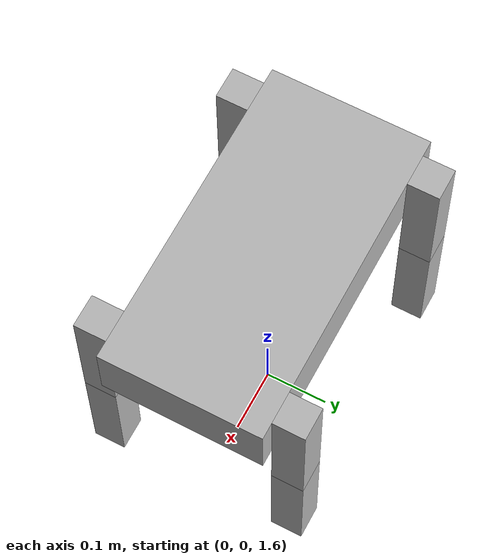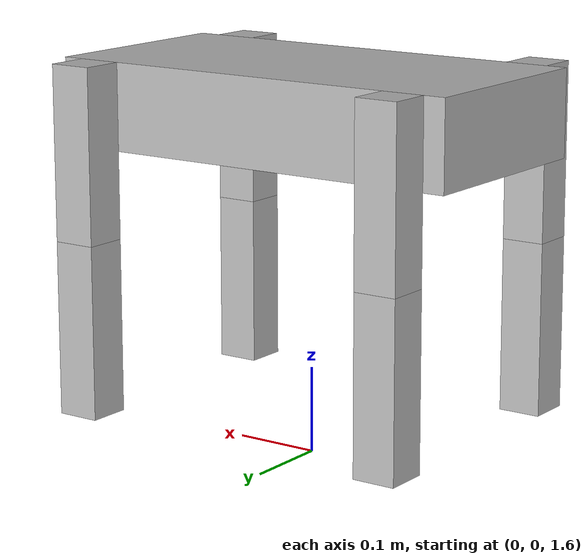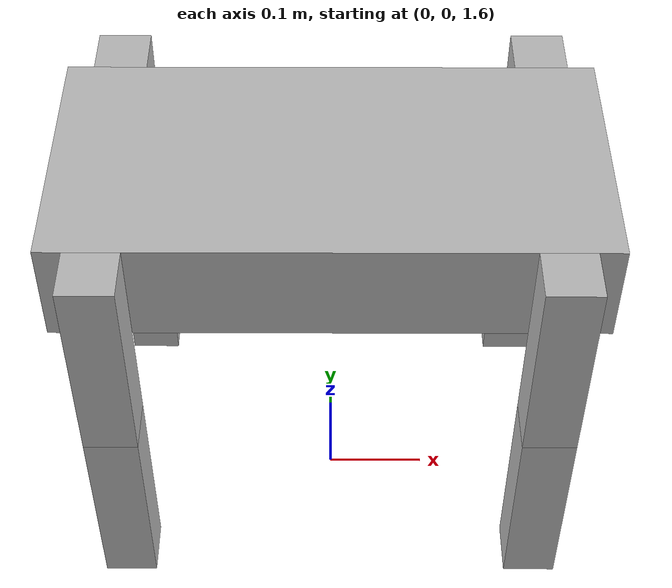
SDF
<?xml version="1.0" ?>
<sdf version="1.7">
  <world name="Quadruped Robot Fixed Demo">

    <!-- A global light source -->
    <include>
      <uri>model://sun</uri>
    </include>

    <!-- A ground plane -->
    <include>
      <uri>model://ground_plane</uri>
    </include>

    <!-- Pose -->
    <include>
      <uri>model://quadruped_fixed</uri>
      <pose>0 0 2.0 0 0 0</pose>
    </include>
  </world>
</sdf>

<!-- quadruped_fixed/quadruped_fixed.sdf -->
<sdf version='1.7'>
  <model name='quadruped'>
    <joint name='fixed' type='fixed'>
      <pose relative_to='__model__'>0 0 0 0 -0 0</pose>
      <parent>world</parent>
      <child>base</child>
    </joint>
    <link name='base'>
      <pose relative_to='fixed'>0 0 0 0 -0 0</pose>
      <inertial>
        <pose>0 0 0 0 -0 0</pose>
        <mass>1</mass>
        <inertia>
          <ixx>0</ixx>
          <ixy>0</ixy>
          <ixz>0</ixz>
          <iyy>0</iyy>
          <iyz>0</iyz>
          <izz>0</izz>
        </inertia>
      </inertial>
      <collision name='base_collision'>
        <pose>0 0 0 0 -0 0</pose>
        <geometry>
          <box>
            <size>0.5 0.25 0.1</size>
          </box>
        </geometry>
      </collision>
      <visual name='base_visual'>
        <pose>0 0 0 0 -0 0</pose>
        <geometry>
          <box>
            <size>0.5 0.25 0.1</size>
          </box>
        </geometry>
      </visual>
    </link>
    <joint name='up_bl' type='revolute'>
      <pose relative_to='base'>-0.2 0 0 0 -0 0</pose>
      <parent>base</parent>
      <child>up_leg_bl</child>
      <axis>
        <xyz>0 -1 0</xyz>
        <limit>
          <lower>-1.57</lower>
          <upper>1.57</upper>
          <effort>100</effort>
          <velocity>10</velocity>
        </limit>
        <dynamics>
          <damping>1</damping>
          <friction>0.01</friction>
          <spring_reference>0</spring_reference>
          <spring_stiffness>0</spring_stiffness>
        </dynamics>
      </axis>
    </joint>
    <link name='up_leg_bl'>
      <pose relative_to='up_bl'>0 0 0 0 -0 0</pose>
      <inertial>
        <pose>0 0 0 0 -0 0</pose>
        <mass>1</mass>
        <inertia>
          <ixx>0.00208333</ixx>
          <ixy>0</ixy>
          <ixz>0</ixz>
          <iyy>0.000208333</iyy>
          <iyz>0</iyz>
          <izz>0.001875</izz>
        </inertia>
      </inertial>
      <collision name='up_leg_bl_collision'>
        <pose>0 0.15 -0.05 0 -0 0</pose>
        <geometry>
          <box>
            <size>0.05 0.05 0.2</size>
          </box>
        </geometry>
      </collision>
      <visual name='up_leg_bl_visual'>
        <pose>0 0.15 -0.05 0 -0 0</pose>
        <geometry>
          <box>
            <size>0.05 0.05 0.2</size>
          </box>
        </geometry>
      </visual>
    </link>
    <joint name='bottom_bl' type='revolute'>
      <pose relative_to='up_leg_bl'>0 0.15 -0.15 0 -0 0</pose>
      <parent>up_leg_bl</parent>
      <child>bottom_leg_bl</child>
      <axis>
        <xyz>0 -1 0</xyz>
        <limit>
          <lower>-1.57</lower>
          <upper>1.57</upper>
          <effort>100</effort>
          <velocity>10</velocity>
        </limit>
        <dynamics>
          <damping>1</damping>
          <friction>0.01</friction>
          <spring_reference>0</spring_reference>
          <spring_stiffness>0</spring_stiffness>
        </dynamics>
      </axis>
    </joint>
    <link name='bottom_leg_bl'>
      <pose relative_to='bottom_bl'>0 0 0 0 -0 0</pose>
      <inertial>
        <pose>0 0 0 0 -0 0</pose>
        <mass>1</mass>
        <inertia>
          <ixx>0.000833333</ixx>
          <ixy>0</ixy>
          <ixz>0</ixz>
          <iyy>0.000833333</iyy>
          <iyz>0</iyz>
          <izz>0</izz>
        </inertia>
      </inertial>
      <collision name='bottom_leg_bl_collision'>
        <pose>0 0 -0.1 0 -0 0</pose>
        <geometry>
          <box>
            <size>0.05 0.05 0.2</size>
          </box>
        </geometry>
      </collision>
      <visual name='bottom_leg_bl_visual'>
        <pose>0 0 -0.1 0 -0 0</pose>
        <geometry>
          <box>
            <size>0.05 0.05 0.2</size>
          </box>
        </geometry>
      </visual>
    </link>
    <joint name='up_br' type='revolute'>
      <pose relative_to='base'>-0.2 0 0 0 -0 0</pose>
      <parent>base</parent>
      <child>up_leg_br</child>
      <axis>
        <xyz>0 -1 0</xyz>
        <limit>
          <lower>-1.57</lower>
          <upper>1.57</upper>
          <effort>100</effort>
          <velocity>10</velocity>
        </limit>
        <dynamics>
          <damping>1</damping>
          <friction>0.01</friction>
          <spring_reference>0</spring_reference>
          <spring_stiffness>0</spring_stiffness>
        </dynamics>
      </axis>
    </joint>
    <link name='up_leg_br'>
      <pose relative_to='up_br'>0 0 0 0 -0 0</pose>
      <inertial>
        <pose>0 0 0 0 -0 0</pose>
        <mass>1</mass>
        <inertia>
          <ixx>0.00208333</ixx>
          <ixy>0</ixy>
          <ixz>0</ixz>
          <iyy>0.000208333</iyy>
          <iyz>0</iyz>
          <izz>0.001875</izz>
        </inertia>
      </inertial>
      <collision name='up_leg_br_collision'>
        <pose>0 -0.15 -0.05 0 -0 0</pose>
        <geometry>
          <box>
            <size>0.05 0.05 0.2</size>
          </box>
        </geometry>
      </collision>
      <visual name='up_leg_br_visual'>
        <pose>0 -0.15 -0.05 0 -0 0</pose>
        <geometry>
          <box>
            <size>0.05 0.05 0.2</size>
          </box>
        </geometry>
      </visual>
    </link>
    <joint name='bottom_br' type='revolute'>
      <pose relative_to='up_leg_br'>0 -0.15 -0.15 0 -0 0</pose>
      <parent>up_leg_br</parent>
      <child>bottom_leg_br</child>
      <axis>
        <xyz>0 -1 0</xyz>
        <limit>
          <lower>-1.57</lower>
          <upper>1.57</upper>
          <effort>100</effort>
          <velocity>10</velocity>
        </limit>
        <dynamics>
          <damping>1</damping>
          <friction>0.01</friction>
          <spring_reference>0</spring_reference>
          <spring_stiffness>0</spring_stiffness>
        </dynamics>
      </axis>
    </joint>
    <link name='bottom_leg_br'>
      <pose relative_to='bottom_br'>0 0 0 0 -0 0</pose>
      <inertial>
        <pose>0 0 0 0 -0 0</pose>
        <mass>1</mass>
        <inertia>
          <ixx>0.000833333</ixx>
          <ixy>0</ixy>
          <ixz>0</ixz>
          <iyy>0.000833333</iyy>
          <iyz>0</iyz>
          <izz>0</izz>
        </inertia>
      </inertial>
      <collision name='bottom_leg_br_collision'>
        <pose>0 0 -0.1 0 -0 0</pose>
        <geometry>
          <box>
            <size>0.05 0.05 0.2</size>
          </box>
        </geometry>
      </collision>
      <visual name='bottom_leg_br_visual'>
        <pose>0 0 -0.1 0 -0 0</pose>
        <geometry>
          <box>
            <size>0.05 0.05 0.2</size>
          </box>
        </geometry>
      </visual>
    </link>
    <joint name='up_fl' type='revolute'>
      <pose relative_to='base'>0.2 0 0 0 -0 0</pose>
      <parent>base</parent>
      <child>up_leg_fl</child>
      <axis>
        <xyz>0 -1 0</xyz>
        <limit>
          <lower>-1.57</lower>
          <upper>1.57</upper>
          <effort>100</effort>
          <velocity>10</velocity>
        </limit>
        <dynamics>
          <damping>1</damping>
          <friction>0.01</friction>
          <spring_reference>0</spring_reference>
          <spring_stiffness>0</spring_stiffness>
        </dynamics>
      </axis>
    </joint>
    <link name='up_leg_fl'>
      <pose relative_to='up_fl'>0 0 0 0 -0 0</pose>
      <inertial>
        <pose>0 0 0 0 -0 0</pose>
        <mass>1</mass>
        <inertia>
          <ixx>0.00208333</ixx>
          <ixy>0</ixy>
          <ixz>0</ixz>
          <iyy>0.000208333</iyy>
          <iyz>0</iyz>
          <izz>0.001875</izz>
        </inertia>
      </inertial>
      <collision name='up_leg_fl_collision'>
        <pose>0 0.15 -0.05 0 -0 0</pose>
        <geometry>
          <box>
            <size>0.05 0.05 0.2</size>
          </box>
        </geometry>
      </collision>
      <visual name='up_leg_fl_visual'>
        <pose>0 0.15 -0.05 0 -0 0</pose>
        <geometry>
          <box>
            <size>0.05 0.05 0.2</size>
          </box>
        </geometry>
      </visual>
    </link>
    <joint name='bottom_fl' type='revolute'>
      <pose relative_to='up_leg_fl'>0 0.15 -0.15 0 -0 0</pose>
      <parent>up_leg_fl</parent>
      <child>bottom_leg_fl</child>
      <axis>
        <xyz>0 -1 0</xyz>
        <limit>
          <lower>-1.57</lower>
          <upper>1.57</upper>
          <effort>100</effort>
          <velocity>10</velocity>
        </limit>
        <dynamics>
          <damping>1</damping>
          <friction>0.01</friction>
          <spring_reference>0</spring_reference>
          <spring_stiffness>0</spring_stiffness>
        </dynamics>
      </axis>
    </joint>
    <link name='bottom_leg_fl'>
      <pose relative_to='bottom_fl'>0 0 0 0 -0 0</pose>
      <inertial>
        <pose>0 0 0 0 -0 0</pose>
        <mass>1</mass>
        <inertia>
          <ixx>0.000833333</ixx>
          <ixy>0</ixy>
          <ixz>0</ixz>
          <iyy>0.000833333</iyy>
          <iyz>0</iyz>
          <izz>0</izz>
        </inertia>
      </inertial>
      <collision name='bottom_leg_fl_collision'>
        <pose>0 0 -0.1 0 -0 0</pose>
        <geometry>
          <box>
            <size>0.05 0.05 0.2</size>
          </box>
        </geometry>
      </collision>
      <visual name='bottom_leg_fl_visual'>
        <pose>0 0 -0.1 0 -0 0</pose>
        <geometry>
          <box>
            <size>0.05 0.05 0.2</size>
          </box>
        </geometry>
      </visual>
    </link>
    <joint name='up_fr' type='revolute'>
      <pose relative_to='base'>0.2 0 0 0 -0 0</pose>
      <parent>base</parent>
      <child>up_leg_fr</child>
      <axis>
        <xyz>0 -1 0</xyz>
        <limit>
          <lower>-1.57</lower>
          <upper>1.57</upper>
          <effort>100</effort>
          <velocity>10</velocity>
        </limit>
        <dynamics>
          <damping>1</damping>
          <friction>0.01</friction>
          <spring_reference>0</spring_reference>
          <spring_stiffness>0</spring_stiffness>
        </dynamics>
      </axis>
    </joint>
    <link name='up_leg_fr'>
      <pose relative_to='up_fr'>0 0 0 0 -0 0</pose>
      <inertial>
        <pose>0 0 0 0 -0 0</pose>
        <mass>1</mass>
        <inertia>
          <ixx>0.00208333</ixx>
          <ixy>0</ixy>
          <ixz>0</ixz>
          <iyy>0.000208333</iyy>
          <iyz>0</iyz>
          <izz>0.001875</izz>
        </inertia>
      </inertial>
      <collision name='up_leg_fr_collision'>
        <pose>0 -0.15 -0.05 0 -0 0</pose>
        <geometry>
          <box>
            <size>0.05 0.05 0.2</size>
          </box>
        </geometry>
      </collision>
      <visual name='up_leg_fr_visual'>
        <pose>0 -0.15 -0.05 0 -0 0</pose>
        <geometry>
          <box>
            <size>0.05 0.05 0.2</size>
          </box>
        </geometry>
      </visual>
    </link>
    <joint name='bottom_fr' type='revolute'>
      <pose relative_to='up_leg_fr'>0 -0.15 -0.15 0 -0 0</pose>
      <parent>up_leg_fr</parent>
      <child>bottom_leg_fr</child>
      <axis>
        <xyz>0 -1 0</xyz>
        <limit>
          <lower>-1.57</lower>
          <upper>1.57</upper>
          <effort>100</effort>
          <velocity>10</velocity>
        </limit>
        <dynamics>
          <damping>1</damping>
          <friction>0.01</friction>
          <spring_reference>0</spring_reference>
          <spring_stiffness>0</spring_stiffness>
        </dynamics>
      </axis>
    </joint>
    <link name='bottom_leg_fr'>
      <pose relative_to='bottom_fr'>0 0 0 0 -0 0</pose>
      <inertial>
        <pose>0 0 0 0 -0 0</pose>
        <mass>1</mass>
        <inertia>
          <ixx>0.000833333</ixx>
          <ixy>0</ixy>
          <ixz>0</ixz>
          <iyy>0.000833333</iyy>
          <iyz>0</iyz>
          <izz>0</izz>
        </inertia>
      </inertial>
      <collision name='bottom_leg_fr_collision'>
        <pose>0 0 -0.1 0 -0 0</pose>
        <geometry>
          <box>
            <size>0.05 0.05 0.2</size>
          </box>
        </geometry>
      </collision>
      <visual name='bottom_leg_fr_visual'>
        <pose>0 0 -0.1 0 -0 0</pose>
        <geometry>
          <box>
            <size>0.05 0.05 0.2</size>
          </box>
        </geometry>
      </visual>
    </link>
    <static>0</static>
    <plugin name='gazebo_ros_joint_state_publisher' filename='libgazebo_ros_joint_state_publisher.so'>
      <ros>
        <namespace>quadruped</namespace>
      </ros>
      <update_rate>20</update_rate>
      <joint_name>up_fl</joint_name>
      <joint_name>up_fr</joint_name>
      <joint_name>up_bl</joint_name>
      <joint_name>up_br</joint_name>
      <joint_name>bottom_fl</joint_name>
      <joint_name>bottom_fr</joint_name>
      <joint_name>bottom_bl</joint_name>
      <joint_name>bottom_br</joint_name>
    </plugin>
  </model>
</sdf>
